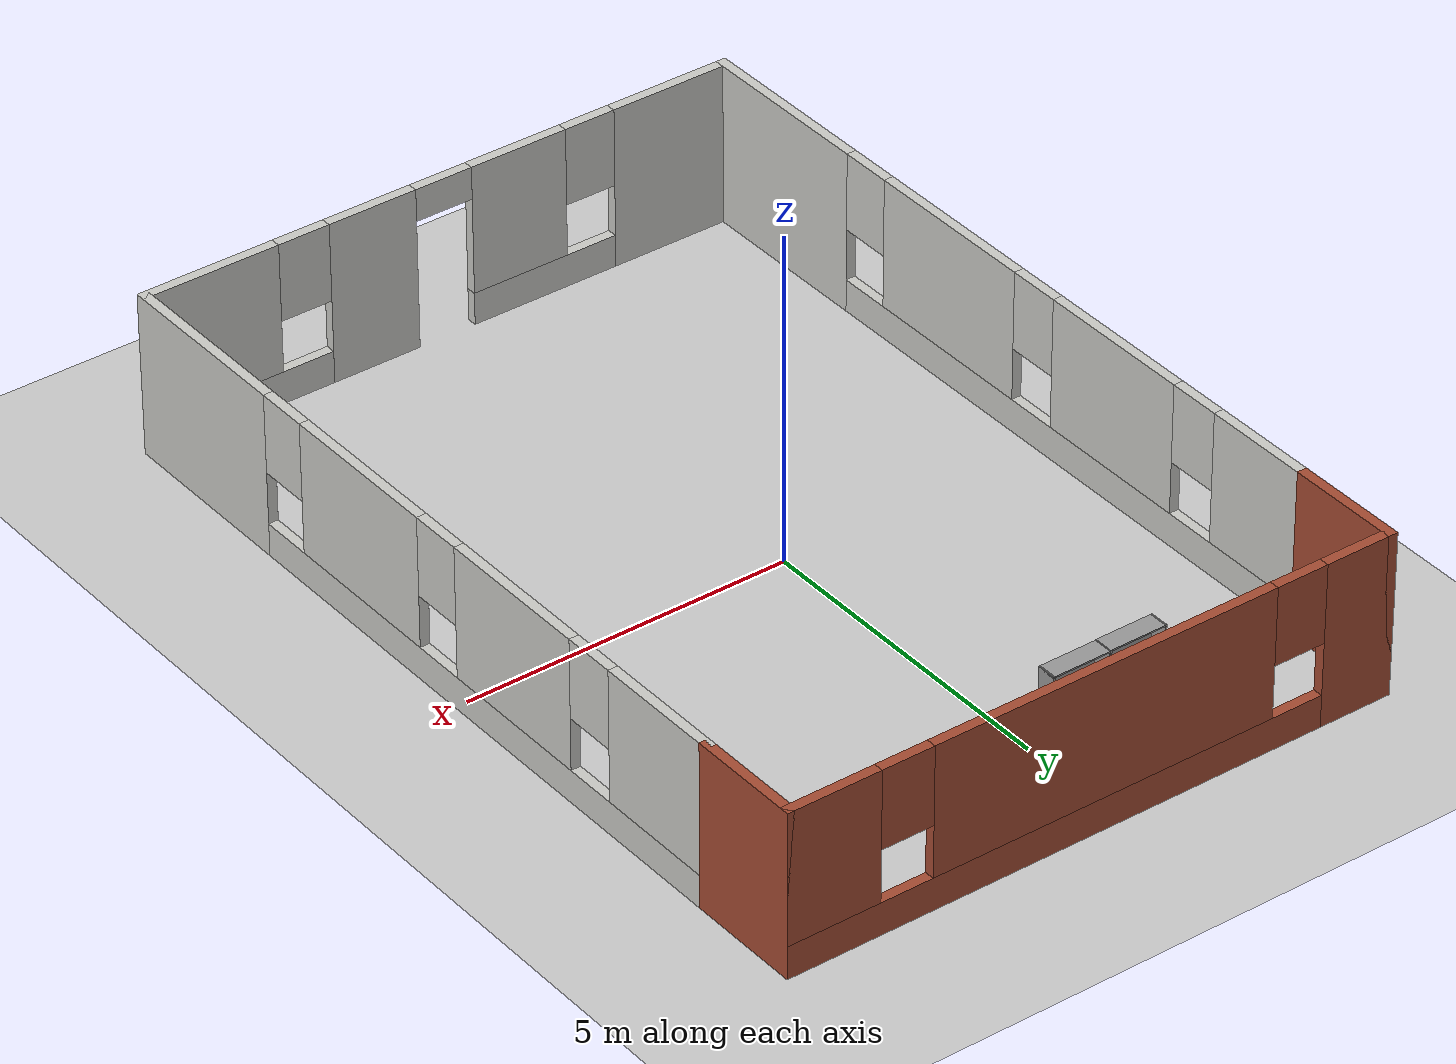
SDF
<sdf version="1.7">
 <world name="default">
  <model name="ground_plane">
   <static>1</static>
   <link name="link">
    <collision name="collision">
     <geometry><plane><normal>0 0 1</normal><size>100 100</size></plane></geometry>
     <surface><friction><ode><mu>100</mu><mu2>50</mu2></ode></friction></surface>
    </collision>
    <visual name="visual">
     <cast_shadows>0</cast_shadows>
     <geometry><plane><normal>0 0 1</normal><size>100 100</size></plane></geometry>
     <material>
      <script><uri>file://media/materials/scripts/gazebo.material</uri><name>Gazebo/Grey</name></script>
     </material>
    </visual>
   </link>
  </model>
  <model name="restaurant_room">
   <pose>0.434241 -0.069972 0 0 -0 0</pose>
   <link name="Wall_10">
    <pose>-0 6.85 0 0 -0 0</pose>
    <visual name="Wall_10_Visual_0">
     <pose>-4.182 0 1.25 0 -0 0</pose>
     <geometry><box><size>1.13601 0.15 2.5</size></box></geometry>
     <material>
      <script><uri>file://media/materials/scripts/gazebo.material</uri><name>Gazebo/Bricks</name></script>
      <ambient>1 1 1 1</ambient>
     </material>
     <meta><layer>0</layer></meta>
    </visual>
    <collision name="Wall_10_Collision_0">
     <geometry><box><size>1.13601 0.15 2.5</size></box></geometry>
     <pose>-4.182 0 1.25 0 -0 0</pose>
    </collision>
    <visual name="Wall_10_Visual_1">
     <pose>0.568004 0 0.25 0 -0 0</pose>
     <geometry><box><size>8.36399 0.15 0.5</size></box></geometry>
     <material>
      <script><uri>file://media/materials/scripts/gazebo.material</uri><name>Gazebo/Bricks</name></script>
      <ambient>1 1 1 1</ambient>
     </material>
     <meta><layer>0</layer></meta>
    </visual>
    <collision name="Wall_10_Collision_1">
     <geometry><box><size>8.36399 0.15 0.5</size></box></geometry>
     <pose>0.568004 0 0.25 0 -0 0</pose>
    </collision>
    <visual name="Wall_10_Visual_2">
     <pose>-0.139368 0 1.5 0 -0 0</pose>
     <geometry><box><size>5.34925 0.15 2</size></box></geometry>
     <material>
      <script><uri>file://media/materials/scripts/gazebo.material</uri><name>Gazebo/Bricks</name></script>
      <ambient>1 1 1 1</ambient>
     </material>
     <meta><layer>0</layer></meta>
    </visual>
    <collision name="Wall_10_Collision_2">
     <geometry><box><size>5.34925 0.15 2</size></box></geometry>
     <pose>-0.139368 0 1.5 0 -0 0</pose>
    </collision>
    <visual name="Wall_10_Visual_3">
     <pose>4.04263 0 1.5 0 -0 0</pose>
     <geometry><box><size>1.41474 0.15 2</size></box></geometry>
     <material>
      <script><uri>file://media/materials/scripts/gazebo.material</uri><name>Gazebo/Bricks</name></script>
      <ambient>1 1 1 1</ambient>
     </material>
     <meta><layer>0</layer></meta>
    </visual>
    <collision name="Wall_10_Collision_3">
     <geometry><box><size>1.41474 0.15 2</size></box></geometry>
     <pose>4.04263 0 1.5 0 -0 0</pose>
    </collision>
    <visual name="Wall_10_Visual_4">
     <pose>-3.21399 0 1.9 0 -0 0</pose>
     <geometry><box><size>0.8 0.15 1.2</size></box></geometry>
     <material>
      <script><uri>file://media/materials/scripts/gazebo.material</uri><name>Gazebo/Bricks</name></script>
      <ambient>1 1 1 1</ambient>
     </material>
     <meta><layer>0</layer></meta>
    </visual>
    <collision name="Wall_10_Collision_4">
     <geometry><box><size>0.8 0.15 1.2</size></box></geometry>
     <pose>-3.21399 0 1.9 0 -0 0</pose>
    </collision>
    <visual name="Wall_10_Visual_5">
     <pose>2.93526 0 1.9 0 -0 0</pose>
     <geometry><box><size>0.8 0.15 1.2</size></box></geometry>
     <material>
      <script><uri>file://media/materials/scripts/gazebo.material</uri><name>Gazebo/Bricks</name></script>
      <ambient>1 1 1 1</ambient>
     </material>
     <meta><layer>0</layer></meta>
    </visual>
    <collision name="Wall_10_Collision_5">
     <geometry><box><size>0.8 0.15 1.2</size></box></geometry>
     <pose>2.93526 0 1.9 0 -0 0</pose>
    </collision>
   </link>
   <link name="Wall_11">
    <collision name="Wall_11_Collision">
     <geometry><box><size>1.75 0.15 2.5</size></box></geometry>
     <pose>0 0 1.25 0 -0 0</pose>
    </collision>
    <visual name="Wall_11_Visual">
     <pose>0 0 1.25 0 -0 0</pose>
     <geometry><box><size>1.75 0.15 2.5</size></box></geometry>
     <material>
      <script><uri>file://media/materials/scripts/gazebo.material</uri><name>Gazebo/Bricks</name></script>
      <ambient>1 1 1 1</ambient>
     </material>
     <meta><layer>0</layer></meta>
    </visual>
    <pose>4.675 6.05 0 0 -0 -1.5708</pose>
   </link>
   <link name="Wall_4">
    <pose>-0 -6.85 0 0 -0 0</pose>
    <visual name="Wall_4_Visual_0">
     <pose>-3.76537 0 1.25 0 -0 0</pose>
     <geometry><box><size>1.96927 0.15 2.5</size></box></geometry>
     <material>
      <script><uri>file://media/materials/scripts/gazebo.material</uri><name>Gazebo/CeilingTiled</name></script>
      <ambient>1 1 1 1</ambient>
     </material>
     <meta><layer>0</layer></meta>
    </visual>
    <collision name="Wall_4_Collision_0">
     <geometry><box><size>1.96927 0.15 2.5</size></box></geometry>
     <pose>-3.76537 0 1.25 0 -0 0</pose>
    </collision>
    <visual name="Wall_4_Visual_1">
     <pose>1.14685 0 1.25 0 -0 0</pose>
     <geometry><box><size>1.38309 0.15 2.5</size></box></geometry>
     <material>
      <script><uri>file://media/materials/scripts/gazebo.material</uri><name>Gazebo/CeilingTiled</name></script>
      <ambient>1 1 1 1</ambient>
     </material>
     <meta><layer>0</layer></meta>
    </visual>
    <collision name="Wall_4_Collision_1">
     <geometry><box><size>1.38309 0.15 2.5</size></box></geometry>
     <pose>1.14685 0 1.25 0 -0 0</pose>
    </collision>
    <visual name="Wall_4_Visual_2">
     <pose>-1.61271 0 0.25 0 -0 0</pose>
     <geometry><box><size>2.33604 0.15 0.5</size></box></geometry>
     <material>
      <script><uri>file://media/materials/scripts/gazebo.material</uri><name>Gazebo/CeilingTiled</name></script>
      <ambient>1 1 1 1</ambient>
     </material>
     <meta><layer>0</layer></meta>
    </visual>
    <collision name="Wall_4_Collision_2">
     <geometry><box><size>2.33604 0.15 0.5</size></box></geometry>
     <pose>-1.61271 0 0.25 0 -0 0</pose>
    </collision>
    <visual name="Wall_4_Visual_3">
     <pose>3.2942 0 0.25 0 -0 0</pose>
     <geometry><box><size>2.91161 0.15 0.5</size></box></geometry>
     <material>
      <script><uri>file://media/materials/scripts/gazebo.material</uri><name>Gazebo/CeilingTiled</name></script>
      <ambient>1 1 1 1</ambient>
     </material>
     <meta><layer>0</layer></meta>
    </visual>
    <collision name="Wall_4_Collision_3">
     <geometry><box><size>2.91161 0.15 0.5</size></box></geometry>
     <pose>3.2942 0 0.25 0 -0 0</pose>
    </collision>
    <visual name="Wall_4_Visual_4">
     <pose>-1.21271 0 1.5 0 -0 0</pose>
     <geometry><box><size>1.53604 0.15 2</size></box></geometry>
     <material>
      <script><uri>file://media/materials/scripts/gazebo.material</uri><name>Gazebo/CeilingTiled</name></script>
      <ambient>1 1 1 1</ambient>
     </material>
     <meta><layer>0</layer></meta>
    </visual>
    <collision name="Wall_4_Collision_4">
     <geometry><box><size>1.53604 0.15 2</size></box></geometry>
     <pose>-1.21271 0 1.5 0 -0 0</pose>
    </collision>
    <visual name="Wall_4_Visual_5">
     <pose>-1.21271 0 1.5 0 -0 0</pose>
     <geometry><box><size>1.53604 0.15 2</size></box></geometry>
     <material>
      <script><uri>file://media/materials/scripts/gazebo.material</uri><name>Gazebo/CeilingTiled</name></script>
      <ambient>1 1 1 1</ambient>
     </material>
     <meta><layer>0</layer></meta>
    </visual>
    <collision name="Wall_4_Collision_5">
     <geometry><box><size>1.53604 0.15 2</size></box></geometry>
     <pose>-1.21271 0 1.5 0 -0 0</pose>
    </collision>
    <visual name="Wall_4_Visual_6">
     <pose>3.6942 0 1.5 0 -0 0</pose>
     <geometry><box><size>2.11161 0.15 2</size></box></geometry>
     <material>
      <script><uri>file://media/materials/scripts/gazebo.material</uri><name>Gazebo/CeilingTiled</name></script>
      <ambient>1 1 1 1</ambient>
     </material>
     <meta><layer>0</layer></meta>
    </visual>
    <collision name="Wall_4_Collision_6">
     <geometry><box><size>2.11161 0.15 2</size></box></geometry>
     <pose>3.6942 0 1.5 0 -0 0</pose>
    </collision>
    <visual name="Wall_4_Visual_7">
     <pose>-2.38073 0 1.9 0 -0 0</pose>
     <geometry><box><size>0.8 0.15 1.2</size></box></geometry>
     <material>
      <script><uri>file://media/materials/scripts/gazebo.material</uri><name>Gazebo/CeilingTiled</name></script>
      <ambient>1 1 1 1</ambient>
     </material>
     <meta><layer>0</layer></meta>
    </visual>
    <collision name="Wall_4_Collision_7">
     <geometry><box><size>0.8 0.15 1.2</size></box></geometry>
     <pose>-2.38073 0 1.9 0 -0 0</pose>
    </collision>
    <visual name="Wall_4_Visual_8">
     <pose>2.23839 0 1.9 0 -0 0</pose>
     <geometry><box><size>0.8 0.15 1.2</size></box></geometry>
     <material>
      <script><uri>file://media/materials/scripts/gazebo.material</uri><name>Gazebo/CeilingTiled</name></script>
      <ambient>1 1 1 1</ambient>
     </material>
     <meta><layer>0</layer></meta>
    </visual>
    <collision name="Wall_4_Collision_8">
     <geometry><box><size>0.8 0.15 1.2</size></box></geometry>
     <pose>2.23839 0 1.9 0 -0 0</pose>
    </collision>
    <visual name="Wall_4_Visual_9">
     <pose>0.005305 0 2.25 0 -0 0</pose>
     <geometry><box><size>0.9 0.15 0.5</size></box></geometry>
     <material>
      <script><uri>file://media/materials/scripts/gazebo.material</uri><name>Gazebo/CeilingTiled</name></script>
      <ambient>1 1 1 1</ambient>
     </material>
     <meta><layer>0</layer></meta>
    </visual>
    <collision name="Wall_4_Collision_9">
     <geometry><box><size>0.9 0.15 0.5</size></box></geometry>
     <pose>0.005305 0 2.25 0 -0 0</pose>
    </collision>
    <visual name="Wall_4_Visual_10">
     <pose>0.005305 0 2.25 0 -0 0</pose>
     <geometry><box><size>0.9 0.15 0.5</size></box></geometry>
     <material>
      <script><uri>file://media/materials/scripts/gazebo.material</uri><name>Gazebo/CeilingTiled</name></script>
      <ambient>1 1 1 1</ambient>
     </material>
     <meta><layer>0</layer></meta>
    </visual>
    <collision name="Wall_4_Collision_10">
     <geometry><box><size>0.9 0.15 0.5</size></box></geometry>
     <pose>0.005305 0 2.25 0 -0 0</pose>
    </collision>
   </link>
   <link name="Wall_5">
    <pose>4.675 -0.799999 0 0 -0 1.5708</pose>
    <visual name="Wall_5_Visual_0">
     <pose>-4.68151 0 1.25 0 -0 0</pose>
     <geometry><box><size>2.88697 0.15 2.5</size></box></geometry>
     <material>
      <script><uri>file://media/materials/scripts/gazebo.material</uri><name>Gazebo/CeilingTiled</name></script>
      <ambient>1 1 1 1</ambient>
     </material>
     <meta><layer>0</layer></meta>
    </visual>
    <collision name="Wall_5_Collision_0">
     <geometry><box><size>2.88697 0.15 2.5</size></box></geometry>
     <pose>-4.68151 0 1.25 0 -0 0</pose>
    </collision>
    <visual name="Wall_5_Visual_1">
     <pose>1.44349 0 0.25 0 -0 0</pose>
     <geometry><box><size>9.36303 0.15 0.5</size></box></geometry>
     <material>
      <script><uri>file://media/materials/scripts/gazebo.material</uri><name>Gazebo/CeilingTiled</name></script>
      <ambient>1 1 1 1</ambient>
     </material>
     <meta><layer>0</layer></meta>
    </visual>
    <collision name="Wall_5_Collision_1">
     <geometry><box><size>9.36303 0.15 0.5</size></box></geometry>
     <pose>1.44349 0 0.25 0 -0 0</pose>
    </collision>
    <visual name="Wall_5_Visual_2">
     <pose>-1.15556 0 1.5 0 -0 0</pose>
     <geometry><box><size>2.56493 0.15 2</size></box></geometry>
     <material>
      <script><uri>file://media/materials/scripts/gazebo.material</uri><name>Gazebo/CeilingTiled</name></script>
      <ambient>1 1 1 1</ambient>
     </material>
     <meta><layer>0</layer></meta>
    </visual>
    <collision name="Wall_5_Collision_2">
     <geometry><box><size>2.56493 0.15 2</size></box></geometry>
     <pose>-1.15556 0 1.5 0 -0 0</pose>
    </collision>
    <visual name="Wall_5_Visual_3">
     <pose>2.13289 0 1.5 0 -0 0</pose>
     <geometry><box><size>2.41197 0.15 2</size></box></geometry>
     <material>
      <script><uri>file://media/materials/scripts/gazebo.material</uri><name>Gazebo/CeilingTiled</name></script>
      <ambient>1 1 1 1</ambient>
     </material>
     <meta><layer>0</layer></meta>
    </visual>
    <collision name="Wall_5_Collision_3">
     <geometry><box><size>2.41197 0.15 2</size></box></geometry>
     <pose>2.13289 0 1.5 0 -0 0</pose>
    </collision>
    <visual name="Wall_5_Visual_4">
     <pose>5.13194 0 1.5 0 -0 0</pose>
     <geometry><box><size>1.98613 0.15 2</size></box></geometry>
     <material>
      <script><uri>file://media/materials/scripts/gazebo.material</uri><name>Gazebo/CeilingTiled</name></script>
      <ambient>1 1 1 1</ambient>
     </material>
     <meta><layer>0</layer></meta>
    </visual>
    <collision name="Wall_5_Collision_4">
     <geometry><box><size>1.98613 0.15 2</size></box></geometry>
     <pose>5.13194 0 1.5 0 -0 0</pose>
    </collision>
    <visual name="Wall_5_Visual_5">
     <pose>-2.83803 0 1.9 0 -0 0</pose>
     <geometry><box><size>0.8 0.15 1.2</size></box></geometry>
     <material>
      <script><uri>file://media/materials/scripts/gazebo.material</uri><name>Gazebo/CeilingTiled</name></script>
      <ambient>1 1 1 1</ambient>
     </material>
     <meta><layer>0</layer></meta>
    </visual>
    <collision name="Wall_5_Collision_5">
     <geometry><box><size>0.8 0.15 1.2</size></box></geometry>
     <pose>-2.83803 0 1.9 0 -0 0</pose>
    </collision>
    <visual name="Wall_5_Visual_6">
     <pose>0.526899 0 1.9 0 -0 0</pose>
     <geometry><box><size>0.8 0.15 1.2</size></box></geometry>
     <material>
      <script><uri>file://media/materials/scripts/gazebo.material</uri><name>Gazebo/CeilingTiled</name></script>
      <ambient>1 1 1 1</ambient>
     </material>
     <meta><layer>0</layer></meta>
    </visual>
    <collision name="Wall_5_Collision_6">
     <geometry><box><size>0.8 0.15 1.2</size></box></geometry>
     <pose>0.526899 0 1.9 0 -0 0</pose>
    </collision>
    <visual name="Wall_5_Visual_7">
     <pose>3.73887 0 1.9 0 -0 0</pose>
     <geometry><box><size>0.8 0.15 1.2</size></box></geometry>
     <material>
      <script><uri>file://media/materials/scripts/gazebo.material</uri><name>Gazebo/CeilingTiled</name></script>
      <ambient>1 1 1 1</ambient>
     </material>
     <meta><layer>0</layer></meta>
    </visual>
    <collision name="Wall_5_Collision_7">
     <geometry><box><size>0.8 0.15 1.2</size></box></geometry>
     <pose>3.73887 0 1.9 0 -0 0</pose>
    </collision>
   </link>
   <link name="Wall_7">
    <pose>-4.675 -0.799999 0 0 -0 1.5708</pose>
    <visual name="Wall_7_Visual_0">
     <pose>-4.68151 0 1.25 0 -0 0</pose>
     <geometry><box><size>2.88697 0.15 2.5</size></box></geometry>
     <material>
      <script><uri>file://media/materials/scripts/gazebo.material</uri><name>Gazebo/CeilingTiled</name></script>
      <ambient>1 1 1 1</ambient>
     </material>
     <meta><layer>0</layer></meta>
    </visual>
    <collision name="Wall_7_Collision_0">
     <geometry><box><size>2.88697 0.15 2.5</size></box></geometry>
     <pose>-4.68151 0 1.25 0 -0 0</pose>
    </collision>
    <visual name="Wall_7_Visual_1">
     <pose>1.44349 0 0.25 0 -0 0</pose>
     <geometry><box><size>9.36303 0.15 0.5</size></box></geometry>
     <material>
      <script><uri>file://media/materials/scripts/gazebo.material</uri><name>Gazebo/CeilingTiled</name></script>
      <ambient>1 1 1 1</ambient>
     </material>
     <meta><layer>0</layer></meta>
    </visual>
    <collision name="Wall_7_Collision_1">
     <geometry><box><size>9.36303 0.15 0.5</size></box></geometry>
     <pose>1.44349 0 0.25 0 -0 0</pose>
    </collision>
    <visual name="Wall_7_Visual_2">
     <pose>-1.06379 0 1.5 0 -0 0</pose>
     <geometry><box><size>2.74847 0.15 2</size></box></geometry>
     <material>
      <script><uri>file://media/materials/scripts/gazebo.material</uri><name>Gazebo/CeilingTiled</name></script>
      <ambient>1 1 1 1</ambient>
     </material>
     <meta><layer>0</layer></meta>
    </visual>
    <collision name="Wall_7_Collision_2">
     <geometry><box><size>2.74847 0.15 2</size></box></geometry>
     <pose>-1.06379 0 1.5 0 -0 0</pose>
    </collision>
    <visual name="Wall_7_Visual_3">
     <pose>2.33172 0 1.5 0 -0 0</pose>
     <geometry><box><size>2.44256 0.15 2</size></box></geometry>
     <material>
      <script><uri>file://media/materials/scripts/gazebo.material</uri><name>Gazebo/CeilingTiled</name></script>
      <ambient>1 1 1 1</ambient>
     </material>
     <meta><layer>0</layer></meta>
    </visual>
    <collision name="Wall_7_Collision_3">
     <geometry><box><size>2.44256 0.15 2</size></box></geometry>
     <pose>2.33172 0 1.5 0 -0 0</pose>
    </collision>
    <visual name="Wall_7_Visual_4">
     <pose>5.239 0 1.5 0 -0 0</pose>
     <geometry><box><size>1.77199 0.15 2</size></box></geometry>
     <material>
      <script><uri>file://media/materials/scripts/gazebo.material</uri><name>Gazebo/CeilingTiled</name></script>
      <ambient>1 1 1 1</ambient>
     </material>
     <meta><layer>0</layer></meta>
    </visual>
    <collision name="Wall_7_Collision_4">
     <geometry><box><size>1.77199 0.15 2</size></box></geometry>
     <pose>5.239 0 1.5 0 -0 0</pose>
    </collision>
    <visual name="Wall_7_Visual_5">
     <pose>-2.83803 0 1.9 0 -0 0</pose>
     <geometry><box><size>0.8 0.15 1.2</size></box></geometry>
     <material>
      <script><uri>file://media/materials/scripts/gazebo.material</uri><name>Gazebo/CeilingTiled</name></script>
      <ambient>1 1 1 1</ambient>
     </material>
     <meta><layer>0</layer></meta>
    </visual>
    <collision name="Wall_7_Collision_5">
     <geometry><box><size>0.8 0.15 1.2</size></box></geometry>
     <pose>-2.83803 0 1.9 0 -0 0</pose>
    </collision>
    <visual name="Wall_7_Visual_6">
     <pose>0.710441 0 1.9 0 -0 0</pose>
     <geometry><box><size>0.8 0.15 1.2</size></box></geometry>
     <material>
      <script><uri>file://media/materials/scripts/gazebo.material</uri><name>Gazebo/CeilingTiled</name></script>
      <ambient>1 1 1 1</ambient>
     </material>
     <meta><layer>0</layer></meta>
    </visual>
    <collision name="Wall_7_Collision_6">
     <geometry><box><size>0.8 0.15 1.2</size></box></geometry>
     <pose>0.710441 0 1.9 0 -0 0</pose>
    </collision>
    <visual name="Wall_7_Visual_7">
     <pose>3.95301 0 1.9 0 -0 0</pose>
     <geometry><box><size>0.8 0.15 1.2</size></box></geometry>
     <material>
      <script><uri>file://media/materials/scripts/gazebo.material</uri><name>Gazebo/CeilingTiled</name></script>
      <ambient>1 1 1 1</ambient>
     </material>
     <meta><layer>0</layer></meta>
    </visual>
    <collision name="Wall_7_Collision_7">
     <geometry><box><size>0.8 0.15 1.2</size></box></geometry>
     <pose>3.95301 0 1.9 0 -0 0</pose>
    </collision>
   </link>
   <link name="Wall_9">
    <collision name="Wall_9_Collision">
     <geometry><box><size>1.75 0.15 2.5</size></box></geometry>
     <pose>0 0 1.25 0 -0 0</pose>
    </collision>
    <visual name="Wall_9_Visual">
     <pose>0 0 1.25 0 -0 0</pose>
     <geometry><box><size>1.75 0.15 2.5</size></box></geometry>
     <material>
      <script><uri>file://media/materials/scripts/gazebo.material</uri><name>Gazebo/Bricks</name></script>
      <ambient>1 1 1 1</ambient>
     </material>
     <meta><layer>0</layer></meta>
    </visual>
    <pose>-4.675 6.05 0 0 -0 1.5708</pose>
   </link>
   <static>1</static>
  </model>
  <model name="Wall_Cabinet_36x15W_0">
   <link name="Wall_0">
    <pose>0 0 0.01 0 -0 0</pose>
    <inertial>
     <mass>1.9796</mass>
     <inertia><ixx>0.0145</ixx><iyy>0.1511</iyy><izz>0.1367</izz><ixy>0</ixy><ixz>0</ixz><iyz>0</iyz></inertia>
    </inertial>
    <collision name="Wall_0_Collision"><geometry><box><size>0.91 0.296 0.02</size></box></geometry></collision>
    <visual name="Wall_0_Visual">
     <geometry><box><size>0.91 0.296 0.02</size></box></geometry>
     <material>
      <script><uri>file://media/materials/scripts/gazebo.material</uri><name>Gazebo/Grey</name></script>
      <ambient>1 1 1 1</ambient>
     </material>
    </visual>
   </link>
   <joint name="0_2" type="fixed">
    <pose>-0.455 0 0 0 -0 0</pose>
    <parent>Wall_2</parent>
    <child>Wall_0</child>
    <axis><xyz>0 0 1</xyz><limit><lower>-1e+16</lower><upper>1e+16</upper></limit></axis>
   </joint>
   <joint name="0_4" type="fixed">
    <pose>0.455 0 0 0 -0 0</pose>
    <parent>Wall_4</parent>
    <child>Wall_0</child>
    <axis><xyz>0 0 1</xyz><limit><lower>-1e+16</lower><upper>1e+16</upper></limit></axis>
   </joint>
   <joint name="0_8" type="fixed">
    <pose>0 -0.148 0 0 -0 0</pose>
    <parent>Wall_8</parent>
    <child>Wall_0</child>
    <axis><xyz>0 0 1</xyz><limit><lower>-1e+16</lower><upper>1e+16</upper></limit></axis>
   </joint>
   <link name="Wall_2">
    <pose>-0.445 0 0.192 0 -0 0</pose>
    <inertial>
     <mass>0.8353</mass>
     <inertia><ixx>0.0061</ixx><iyy>0.0164</iyy><izz>0.0103</izz><ixy>0</ixy><ixz>0</ixz><iyz>0</iyz></inertia>
    </inertial>
    <collision name="Wall_2_Collision"><geometry><box><size>0.02 0.296 0.384</size></box></geometry></collision>
    <visual name="Wall_2_Visual">
     <geometry><box><size>0.02 0.296 0.384</size></box></geometry>
     <material>
      <script><uri>file://media/materials/scripts/gazebo.material</uri><name>Gazebo/Grey</name></script>
      <ambient>1 1 1 1</ambient>
     </material>
    </visual>
   </link>
   <link name="Wall_4">
    <pose>0.445 0 0.192 0 -0 0</pose>
    <inertial>
     <mass>0.8353</mass>
     <inertia><ixx>0.0061</ixx><iyy>0.0164</iyy><izz>0.0103</izz><ixy>0</ixy><ixz>0</ixz><iyz>0</iyz></inertia>
    </inertial>
    <collision name="Wall_4_Collision"><geometry><box><size>0.02 0.296 0.384</size></box></geometry></collision>
    <visual name="Wall_4_Visual">
     <geometry><box><size>0.02 0.296 0.384</size></box></geometry>
     <material>
      <script><uri>file://media/materials/scripts/gazebo.material</uri><name>Gazebo/Grey</name></script>
      <ambient>1 1 1 1</ambient>
     </material>
    </visual>
   </link>
   <link name="Wall_6">
    <pose>0 0 0.374 0 -0 0</pose>
    <inertial>
     <mass>1.9796</mass>
     <inertia><ixx>0.0145</ixx><iyy>0.1511</iyy><izz>0.1367</izz><ixy>0</ixy><ixz>0</ixz><iyz>0</iyz></inertia>
    </inertial>
    <collision name="Wall_6_Collision"><geometry><box><size>0.91 0.296 0.02</size></box></geometry></collision>
    <visual name="Wall_6_Visual">
     <geometry><box><size>0.91 0.296 0.02</size></box></geometry>
     <material>
      <script><uri>file://media/materials/scripts/gazebo.material</uri><name>Gazebo/Grey</name></script>
      <ambient>1 1 1 1</ambient>
     </material>
    </visual>
   </link>
   <joint name="6_2" type="fixed">
    <pose>-0.455 0 0 0 -0 0</pose>
    <parent>Wall_2</parent>
    <child>Wall_6</child>
    <axis><xyz>0 0 1</xyz><limit><lower>-1e+16</lower><upper>1e+16</upper></limit></axis>
   </joint>
   <joint name="6_4" type="fixed">
    <pose>0.455 0 0 0 -0 0</pose>
    <parent>Wall_4</parent>
    <child>Wall_6</child>
    <axis><xyz>0 0 1</xyz><limit><lower>-1e+16</lower><upper>1e+16</upper></limit></axis>
   </joint>
   <joint name="6_8" type="fixed">
    <pose>0 -0.148 0 0 -0 0</pose>
    <parent>Wall_8</parent>
    <child>Wall_6</child>
    <axis><xyz>0 0 1</xyz><limit><lower>-1e+16</lower><upper>1e+16</upper></limit></axis>
   </joint>
   <link name="Wall_8">
    <pose>0 -0.138 0.19 0 -0 0</pose>
    <inertial>
     <mass>2.5302</mass>
     <inertia><ixx>0.0305</ixx><iyy>0.1732</iyy><izz>0.2035</izz><ixy>0</ixy><ixz>0</ixz><iyz>0</iyz></inertia>
    </inertial>
    <collision name="Wall_8_Collision"><geometry><box><size>0.906 0.02 0.38</size></box></geometry></collision>
    <visual name="Wall_8_Visual">
     <geometry><box><size>0.906 0.02 0.38</size></box></geometry>
     <material>
      <script><uri>file://media/materials/scripts/gazebo.material</uri><name>Gazebo/Grey</name></script>
      <ambient>1 1 1 1</ambient>
     </material>
    </visual>
   </link>
   <joint name="8_2" type="fixed">
    <pose>-0.453 0 0 0 -0 0</pose>
    <parent>Wall_2</parent>
    <child>Wall_8</child>
    <axis><xyz>0 1 0</xyz><limit><lower>-1e+16</lower><upper>1e+16</upper></limit></axis>
   </joint>
   <joint name="8_4" type="fixed">
    <pose>0.453 0 0 0 -0 0</pose>
    <parent>Wall_4</parent>
    <child>Wall_8</child>
    <axis><xyz>0 1 0</xyz><limit><lower>-1e+16</lower><upper>1e+16</upper></limit></axis>
   </joint>
   <static>1</static>
   <pose>-1.9013 4.67122 0.384371 0 -0 0</pose>
  </model>
  <model name="Wall_Cabinet_36x15W_2">
   <link name="Wall_0">
    <pose>0 0 0.01 0 -0 0</pose>
    <inertial>
     <mass>1.9796</mass>
     <inertia><ixx>0.0145</ixx><iyy>0.1511</iyy><izz>0.1367</izz><ixy>0</ixy><ixz>0</ixz><iyz>0</iyz></inertia>
    </inertial>
    <collision name="Wall_0_Collision"><geometry><box><size>0.91 0.296 0.02</size></box></geometry></collision>
    <visual name="Wall_0_Visual">
     <geometry><box><size>0.91 0.296 0.02</size></box></geometry>
     <material>
      <script><uri>file://media/materials/scripts/gazebo.material</uri><name>Gazebo/Grey</name></script>
      <ambient>1 1 1 1</ambient>
     </material>
    </visual>
   </link>
   <joint name="0_2" type="fixed">
    <pose>-0.455 0 0 0 -0 0</pose>
    <parent>Wall_2</parent>
    <child>Wall_0</child>
    <axis><xyz>0 0 1</xyz><limit><lower>-1e+16</lower><upper>1e+16</upper></limit></axis>
   </joint>
   <joint name="0_4" type="fixed">
    <pose>0.455 0 0 0 -0 0</pose>
    <parent>Wall_4</parent>
    <child>Wall_0</child>
    <axis><xyz>0 0 1</xyz><limit><lower>-1e+16</lower><upper>1e+16</upper></limit></axis>
   </joint>
   <joint name="0_8" type="fixed">
    <pose>0 -0.148 0 0 -0 0</pose>
    <parent>Wall_8</parent>
    <child>Wall_0</child>
    <axis><xyz>0 0 1</xyz><limit><lower>-1e+16</lower><upper>1e+16</upper></limit></axis>
   </joint>
   <link name="Wall_2">
    <pose>-0.445 0 0.192 0 -0 0</pose>
    <inertial>
     <mass>0.8353</mass>
     <inertia><ixx>0.0061</ixx><iyy>0.0164</iyy><izz>0.0103</izz><ixy>0</ixy><ixz>0</ixz><iyz>0</iyz></inertia>
    </inertial>
    <collision name="Wall_2_Collision"><geometry><box><size>0.02 0.296 0.384</size></box></geometry></collision>
    <visual name="Wall_2_Visual">
     <geometry><box><size>0.02 0.296 0.384</size></box></geometry>
     <material>
      <script><uri>file://media/materials/scripts/gazebo.material</uri><name>Gazebo/Grey</name></script>
      <ambient>1 1 1 1</ambient>
     </material>
    </visual>
   </link>
   <link name="Wall_4">
    <pose>0.445 0 0.192 0 -0 0</pose>
    <inertial>
     <mass>0.8353</mass>
     <inertia><ixx>0.0061</ixx><iyy>0.0164</iyy><izz>0.0103</izz><ixy>0</ixy><ixz>0</ixz><iyz>0</iyz></inertia>
    </inertial>
    <collision name="Wall_4_Collision"><geometry><box><size>0.02 0.296 0.384</size></box></geometry></collision>
    <visual name="Wall_4_Visual">
     <geometry><box><size>0.02 0.296 0.384</size></box></geometry>
     <material>
      <script><uri>file://media/materials/scripts/gazebo.material</uri><name>Gazebo/Grey</name></script>
      <ambient>1 1 1 1</ambient>
     </material>
    </visual>
   </link>
   <link name="Wall_6">
    <pose>0 0 0.374 0 -0 0</pose>
    <inertial>
     <mass>1.9796</mass>
     <inertia><ixx>0.0145</ixx><iyy>0.1511</iyy><izz>0.1367</izz><ixy>0</ixy><ixz>0</ixz><iyz>0</iyz></inertia>
    </inertial>
    <collision name="Wall_6_Collision"><geometry><box><size>0.91 0.296 0.02</size></box></geometry></collision>
    <visual name="Wall_6_Visual">
     <geometry><box><size>0.91 0.296 0.02</size></box></geometry>
     <material>
      <script><uri>file://media/materials/scripts/gazebo.material</uri><name>Gazebo/Grey</name></script>
      <ambient>1 1 1 1</ambient>
     </material>
    </visual>
   </link>
   <joint name="6_2" type="fixed">
    <pose>-0.455 0 0 0 -0 0</pose>
    <parent>Wall_2</parent>
    <child>Wall_6</child>
    <axis><xyz>0 0 1</xyz><limit><lower>-1e+16</lower><upper>1e+16</upper></limit></axis>
   </joint>
   <joint name="6_4" type="fixed">
    <pose>0.455 0 0 0 -0 0</pose>
    <parent>Wall_4</parent>
    <child>Wall_6</child>
    <axis><xyz>0 0 1</xyz><limit><lower>-1e+16</lower><upper>1e+16</upper></limit></axis>
   </joint>
   <joint name="6_8" type="fixed">
    <pose>0 -0.148 0 0 -0 0</pose>
    <parent>Wall_8</parent>
    <child>Wall_6</child>
    <axis><xyz>0 0 1</xyz><limit><lower>-1e+16</lower><upper>1e+16</upper></limit></axis>
   </joint>
   <link name="Wall_8">
    <pose>0 -0.138 0.19 0 -0 0</pose>
    <inertial>
     <mass>2.5302</mass>
     <inertia><ixx>0.0305</ixx><iyy>0.1732</iyy><izz>0.2035</izz><ixy>0</ixy><ixz>0</ixz><iyz>0</iyz></inertia>
    </inertial>
    <collision name="Wall_8_Collision"><geometry><box><size>0.906 0.02 0.38</size></box></geometry></collision>
    <visual name="Wall_8_Visual">
     <geometry><box><size>0.906 0.02 0.38</size></box></geometry>
     <material>
      <script><uri>file://media/materials/scripts/gazebo.material</uri><name>Gazebo/Grey</name></script>
      <ambient>1 1 1 1</ambient>
     </material>
    </visual>
   </link>
   <joint name="8_2" type="fixed">
    <pose>-0.453 0 0 0 -0 0</pose>
    <parent>Wall_2</parent>
    <child>Wall_8</child>
    <axis><xyz>0 1 0</xyz><limit><lower>-1e+16</lower><upper>1e+16</upper></limit></axis>
   </joint>
   <joint name="8_4" type="fixed">
    <pose>0.453 0 0 0 -0 0</pose>
    <parent>Wall_4</parent>
    <child>Wall_8</child>
    <axis><xyz>0 1 0</xyz><limit><lower>-1e+16</lower><upper>1e+16</upper></limit></axis>
   </joint>
   <static>1</static>
   <pose>-0.98264 4.67766 0.380445 0 -0 0</pose>
  </model>
 </world>
</sdf>
